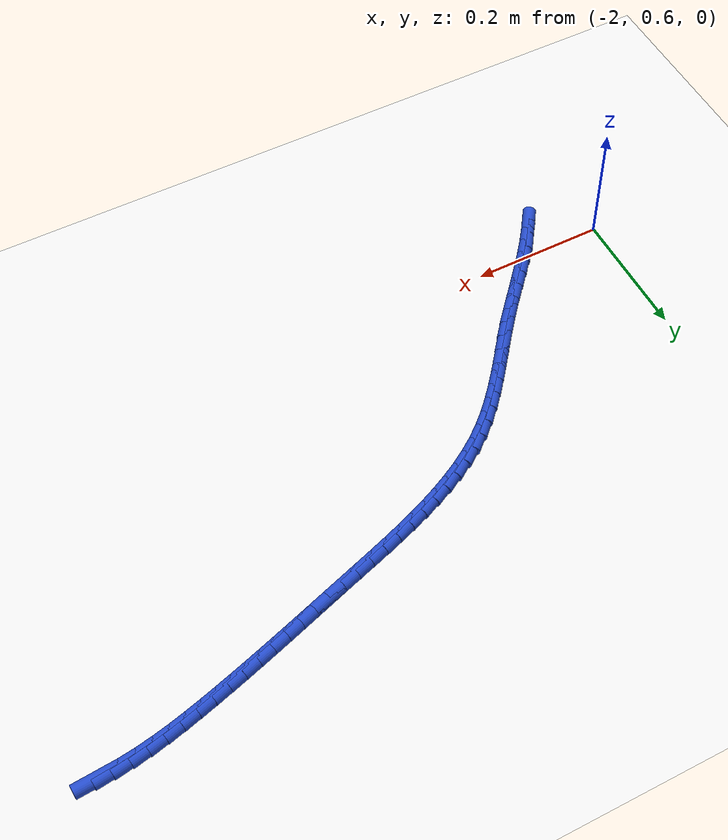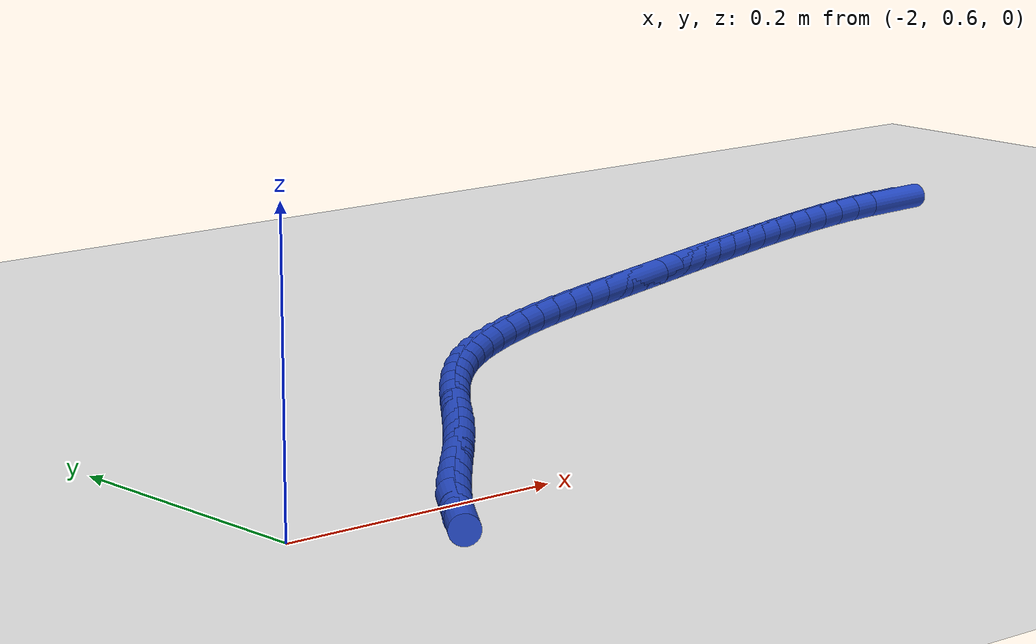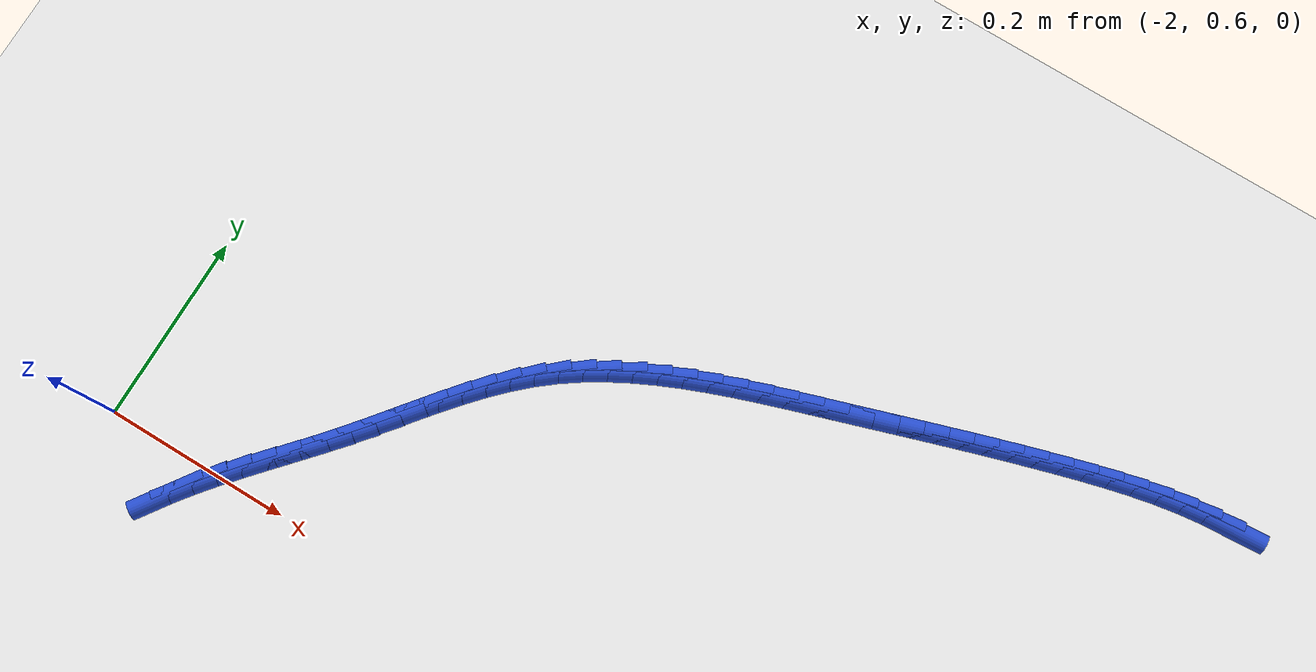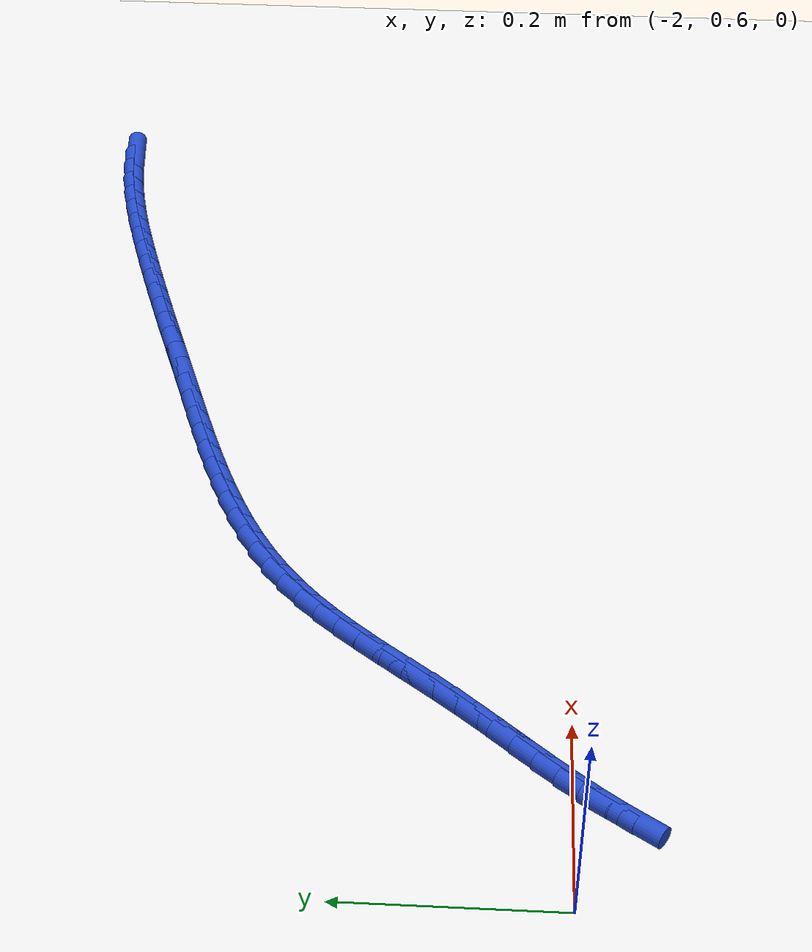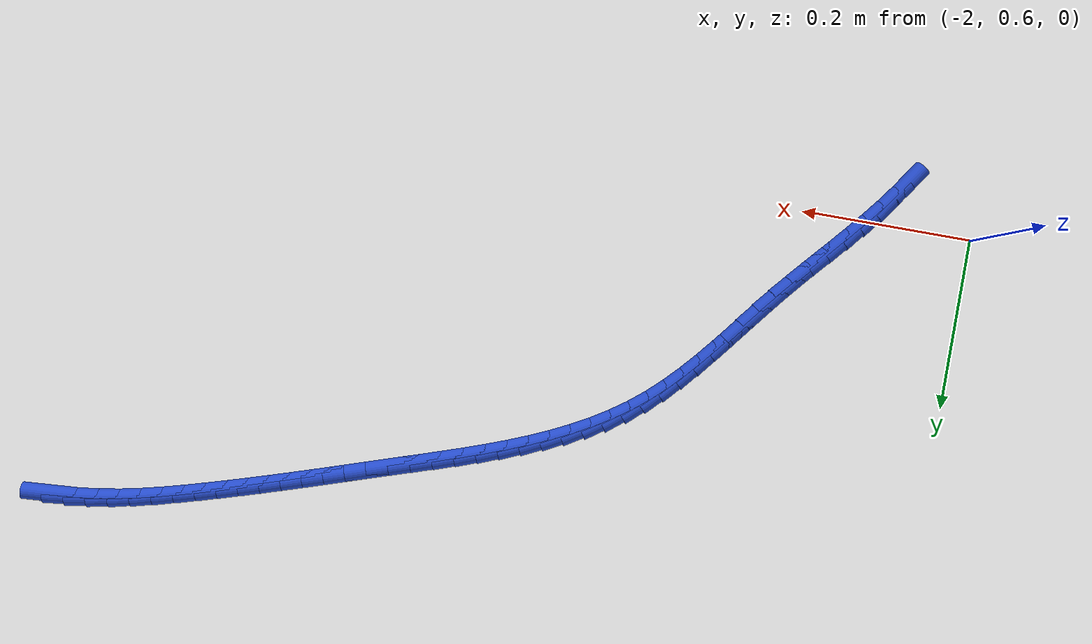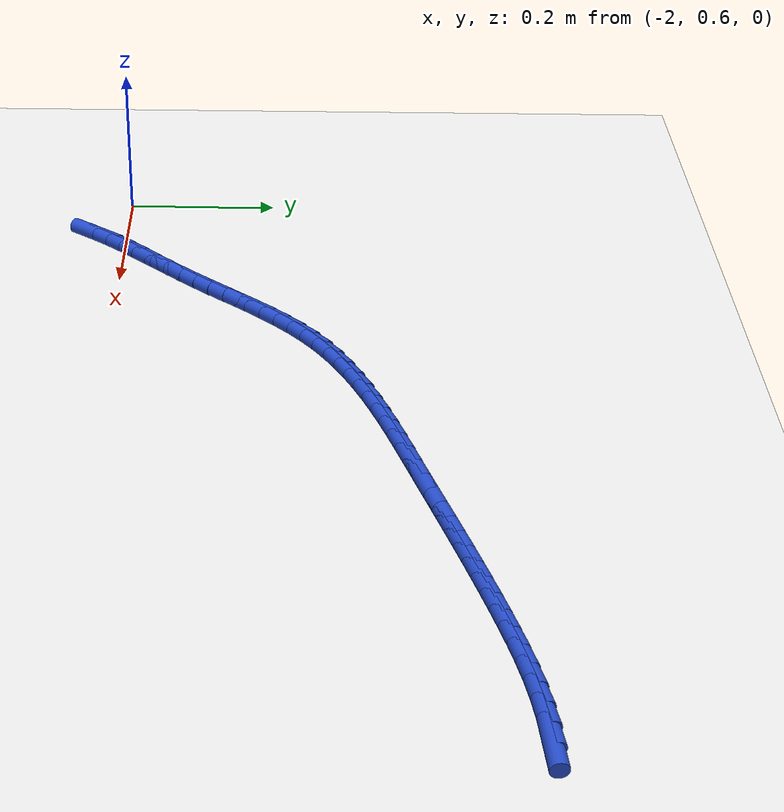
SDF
<sdf version="1.6">
 <world name="default">
  <model name="ground_plane">
   <static>1</static>
   <link name="link">
    <collision name="collision">
     <geometry><plane><normal>0 0 1</normal><size>100 100</size></plane></geometry>
     <surface><friction><ode><mu>100</mu><mu2>50</mu2></ode></friction></surface>
    </collision>
    <visual name="visual">
     <cast_shadows>0</cast_shadows>
     <geometry><plane><normal>0 0 1</normal><size>100 100</size></plane></geometry>
     <material>
      <script><uri>file://media/materials/scripts/gazebo.material</uri><name>Gazebo/WhiteGlow</name></script>
     </material>
    </visual>
   </link>
  </model>
  <model name="line">
   <link name="link_63">
    <pose>-0.9960045848867498 1.0773344773930735 0.01 0 1.57 0.06731471541964741</pose>
    <collision name="collision">
     <geometry><cylinder><radius>0.01</radius><length>0.08</length></cylinder></geometry>
    </collision>
    <visual name="visual">
     <material>
      <script><name>Gazebo/Blue</name><uri>file://media/materials/scripts/gazebo.material</uri></script>
     </material>
     <geometry><cylinder><radius>0.01</radius><length>0.08</length></cylinder></geometry>
    </visual>
   </link>
   <link name="link_64">
    <pose>-1.0209771575715214 1.0756509121041924 0.01 0 1.57 0.12272356616300831</pose>
    <collision name="collision">
     <geometry><cylinder><radius>0.01</radius><length>0.08</length></cylinder></geometry>
    </collision>
    <visual name="visual">
     <material>
      <script><name>Gazebo/Blue</name><uri>file://media/materials/scripts/gazebo.material</uri></script>
     </material>
     <geometry><cylinder><radius>0.01</radius><length>0.08</length></cylinder></geometry>
    </visual>
   </link>
   <link name="link_65">
    <pose>-1.0459637178035281 1.072568984388533 0.01 0 1.57 0.16948650251394934</pose>
    <collision name="collision">
     <geometry><cylinder><radius>0.01</radius><length>0.08</length></cylinder></geometry>
    </collision>
    <visual name="visual">
     <material>
      <script><name>Gazebo/Blue</name><uri>file://media/materials/scripts/gazebo.material</uri></script>
     </material>
     <geometry><cylinder><radius>0.01</radius><length>0.08</length></cylinder></geometry>
    </visual>
   </link>
   <link name="link_66">
    <pose>-1.0709257845715596 1.0682972698237867 0.01 0 1.57 0.207919671183176</pose>
    <collision name="collision">
     <geometry><cylinder><radius>0.01</radius><length>0.08</length></cylinder></geometry>
    </collision>
    <visual name="visual">
     <material>
      <script><name>Gazebo/Blue</name><uri>file://media/materials/scripts/gazebo.material</uri></script>
     </material>
     <geometry><cylinder><radius>0.01</radius><length>0.08</length></cylinder></geometry>
    </visual>
   </link>
   <link name="link_67">
    <pose>-1.0958248768644085 1.0630443439876456 0.01 0 1.57 0.23836959375116112</pose>
    <collision name="collision">
     <geometry><cylinder><radius>0.01</radius><length>0.08</length></cylinder></geometry>
    </collision>
    <visual name="visual">
     <material>
      <script><name>Gazebo/Blue</name><uri>file://media/materials/scripts/gazebo.material</uri></script>
     </material>
     <geometry><cylinder><radius>0.01</radius><length>0.08</length></cylinder></geometry>
    </visual>
   </link>
   <link name="link_68">
    <pose>-1.1206225136708647 1.0570187824578012 0.01 0 1.57 0.26114128751461496</pose>
    <collision name="collision">
     <geometry><cylinder><radius>0.01</radius><length>0.08</length></cylinder></geometry>
    </collision>
    <visual name="visual">
     <material>
      <script><name>Gazebo/Blue</name><uri>file://media/materials/scripts/gazebo.material</uri></script>
     </material>
     <geometry><cylinder><radius>0.01</radius><length>0.08</length></cylinder></geometry>
    </visual>
   </link>
   <link name="link_69">
    <pose>-1.1452802139797196 1.0504291608119447 0.01 0 1.57 0.2764508847128336</pose>
    <collision name="collision">
     <geometry><cylinder><radius>0.01</radius><length>0.08</length></cylinder></geometry>
    </collision>
    <visual name="visual">
     <material>
      <script><name>Gazebo/Blue</name><uri>file://media/materials/scripts/gazebo.material</uri></script>
     </material>
     <geometry><cylinder><radius>0.01</radius><length>0.08</length></cylinder></geometry>
    </visual>
   </link>
   <link name="link_70">
    <pose>-1.1697595203626392 1.043483998624131 0.01 0 1.57 0.28587610004820185</pose>
    <collision name="collision">
     <geometry><cylinder><radius>0.01</radius><length>0.08</length></cylinder></geometry>
    </collision>
    <visual name="visual">
     <material>
      <script><name>Gazebo/Blue</name><uri>file://media/materials/scripts/gazebo.material</uri></script>
     </material>
     <geometry><cylinder><radius>0.01</radius><length>0.08</length></cylinder></geometry>
    </visual>
   </link>
   <link name="link_71">
    <pose>-1.1940408193171363 1.0363470656909701 0.01 0 1.57 0.2935571192196816</pose>
    <collision name="collision">
     <geometry><cylinder><radius>0.01</radius><length>0.08</length></cylinder></geometry>
    </collision>
    <visual name="visual">
     <material>
      <script><name>Gazebo/Blue</name><uri>file://media/materials/scripts/gazebo.material</uri></script>
     </material>
     <geometry><cylinder><radius>0.01</radius><length>0.08</length></cylinder></geometry>
    </visual>
   </link>
   <link name="link_72">
    <pose>-1.2181572337983408 1.029056895445872 0.01 0 1.57 0.30016967015858065</pose>
    <collision name="collision">
     <geometry><cylinder><radius>0.01</radius><length>0.08</length></cylinder></geometry>
    </collision>
    <visual name="visual">
     <material>
      <script><name>Gazebo/Blue</name><uri>file://media/materials/scripts/gazebo.material</uri></script>
     </material>
     <geometry><cylinder><radius>0.01</radius><length>0.08</length></cylinder></geometry>
    </visual>
   </link>
   <link name="link_73">
    <pose>-1.2421510419305883 1.0216302800042354 0.01 0 1.57 0.3056751671598404</pose>
    <collision name="collision">
     <geometry><cylinder><radius>0.01</radius><length>0.08</length></cylinder></geometry>
    </collision>
    <visual name="visual">
     <material>
      <script><name>Gazebo/Blue</name><uri>file://media/materials/scripts/gazebo.material</uri></script>
     </material>
     <geometry><cylinder><radius>0.01</radius><length>0.08</length></cylinder></geometry>
    </visual>
   </link>
   <link name="link_74">
    <pose>-1.2660645218382154 1.0140840114814602 0.01 0 1.57 0.310044543074216</pose>
    <collision name="collision">
     <geometry><cylinder><radius>0.01</radius><length>0.08</length></cylinder></geometry>
    </collision>
    <visual name="visual">
     <material>
      <script><name>Gazebo/Blue</name><uri>file://media/materials/scripts/gazebo.material</uri></script>
     </material>
     <geometry><cylinder><radius>0.01</radius><length>0.08</length></cylinder></geometry>
    </visual>
   </link>
   <link name="link_75">
    <pose>-1.2899399516455572 1.006434881992945 0.01 0 1.57 0.3132585399794946</pose>
    <collision name="collision">
     <geometry><cylinder><radius>0.01</radius><length>0.08</length></cylinder></geometry>
    </collision>
    <visual name="visual">
     <material>
      <script><name>Gazebo/Blue</name><uri>file://media/materials/scripts/gazebo.material</uri></script>
     </material>
     <geometry><cylinder><radius>0.01</radius><length>0.08</length></cylinder></geometry>
    </visual>
   </link>
   <link name="link_76">
    <pose>-1.3138196094769499 0.9986996836540889 0.01 0 1.57 0.31530782320399275</pose>
    <collision name="collision">
     <geometry><cylinder><radius>0.01</radius><length>0.08</length></cylinder></geometry>
    </collision>
    <visual name="visual">
     <material>
      <script><name>Gazebo/Blue</name><uri>file://media/materials/scripts/gazebo.material</uri></script>
     </material>
     <geometry><cylinder><radius>0.01</radius><length>0.08</length></cylinder></geometry>
    </visual>
   </link>
   <link name="link_77">
    <pose>-1.3377457734567293 0.9908952085802912 0.01 0 1.57 0.31619292521042125</pose>
    <collision name="collision">
     <geometry><cylinder><radius>0.01</radius><length>0.08</length></cylinder></geometry>
    </collision>
    <visual name="visual">
     <material>
      <script><name>Gazebo/Blue</name><uri>file://media/materials/scripts/gazebo.material</uri></script>
     </material>
     <geometry><cylinder><radius>0.01</radius><length>0.08</length></cylinder></geometry>
    </visual>
   </link>
   <link name="link_78">
    <pose>-1.3617607217092318 0.9830382488869508 0.01 0 1.57 0.31592402913411954</pose>
    <collision name="collision">
     <geometry><cylinder><radius>0.01</radius><length>0.08</length></cylinder></geometry>
    </collision>
    <visual name="visual">
     <material>
      <script><name>Gazebo/Blue</name><uri>file://media/materials/scripts/gazebo.material</uri></script>
     </material>
     <geometry><cylinder><radius>0.01</radius><length>0.08</length></cylinder></geometry>
    </visual>
   </link>
   <link name="link_79">
    <pose>-1.3859067323587915 0.9751455966894665 0.01 0 1.57 0.3149775887304113</pose>
    <collision name="collision">
     <geometry><cylinder><radius>0.01</radius><length>0.08</length></cylinder></geometry>
    </collision>
    <visual name="visual">
     <material>
      <script><name>Gazebo/Blue</name><uri>file://media/materials/scripts/gazebo.material</uri></script>
     </material>
     <geometry><cylinder><radius>0.01</radius><length>0.08</length></cylinder></geometry>
    </visual>
   </link>
   <link name="link_80">
    <pose>-1.4102158289366342 0.9672250937292876 0.01 0 1.57 0.31752404117702204</pose>
    <collision name="collision">
     <geometry><cylinder><radius>0.01</radius><length>0.08</length></cylinder></geometry>
    </collision>
    <visual name="visual">
     <material>
      <script><name>Gazebo/Blue</name><uri>file://media/materials/scripts/gazebo.material</uri></script>
     </material>
     <geometry><cylinder><radius>0.01</radius><length>0.08</length></cylinder></geometry>
    </visual>
   </link>
   <link name="link_81">
    <pose>-1.434626279805508 0.9592027507275063 0.01 0 1.57 0.32575678194027496</pose>
    <collision name="collision">
     <geometry><cylinder><radius>0.01</radius><length>0.08</length></cylinder></geometry>
    </collision>
    <visual name="visual">
     <material>
      <script><name>Gazebo/Blue</name><uri>file://media/materials/scripts/gazebo.material</uri></script>
     </material>
     <geometry><cylinder><radius>0.01</radius><length>0.08</length></cylinder></geometry>
    </visual>
   </link>
   <link name="link_82">
    <pose>-1.459026102097768 0.9509607183223612 0.01 0 1.57 0.33972220007475834</pose>
    <collision name="collision">
     <geometry><cylinder><radius>0.01</radius><length>0.08</length></cylinder></geometry>
    </collision>
    <visual name="visual">
     <material>
      <script><name>Gazebo/Blue</name><uri>file://media/materials/scripts/gazebo.material</uri></script>
     </material>
     <geometry><cylinder><radius>0.01</radius><length>0.08</length></cylinder></geometry>
    </visual>
   </link>
   <link name="link_83">
    <pose>-1.483302834867046 0.9423807298772864 0.01 0 1.57 0.3595277951602803</pose>
    <collision name="collision">
     <geometry><cylinder><radius>0.01</radius><length>0.08</length></cylinder></geometry>
    </collision>
    <visual name="visual">
     <material>
      <script><name>Gazebo/Blue</name><uri>file://media/materials/scripts/gazebo.material</uri></script>
     </material>
     <geometry><cylinder><radius>0.01</radius><length>0.08</length></cylinder></geometry>
    </visual>
   </link>
   <link name="link_84">
    <pose>-1.5073440171669759 0.9333445187557163 0.01 0 1.57 0.38535181601708507</pose>
    <collision name="collision">
     <geometry><cylinder><radius>0.01</radius><length>0.08</length></cylinder></geometry>
    </collision>
    <visual name="visual">
     <material>
      <script><name>Gazebo/Blue</name><uri>file://media/materials/scripts/gazebo.material</uri></script>
     </material>
     <geometry><cylinder><radius>0.01</radius><length>0.08</length></cylinder></geometry>
    </visual>
   </link>
   <link name="link_85">
    <pose>-1.5310371880511882 0.9237338183210844 0.01 0 1.57 0.4174265664303013</pose>
    <collision name="collision">
     <geometry><cylinder><radius>0.01</radius><length>0.08</length></cylinder></geometry>
    </collision>
    <visual name="visual">
     <material>
      <script><name>Gazebo/Blue</name><uri>file://media/materials/scripts/gazebo.material</uri></script>
     </material>
     <geometry><cylinder><radius>0.01</radius><length>0.08</length></cylinder></geometry>
    </visual>
   </link>
   <link name="link_86">
    <pose>-1.5542698865733173 0.9134303619368249 0.01 0 1.57 0.4560139336835053</pose>
    <collision name="collision">
     <geometry><cylinder><radius>0.01</radius><length>0.08</length></cylinder></geometry>
    </collision>
    <visual name="visual">
     <material>
      <script><name>Gazebo/Blue</name><uri>file://media/materials/scripts/gazebo.material</uri></script>
     </material>
     <geometry><cylinder><radius>0.01</radius><length>0.08</length></cylinder></geometry>
    </visual>
   </link>
   <link name="link_87">
    <pose>-1.576929651786995 0.9023158829663724 0.01 0 1.57 0.5013698508926541</pose>
    <collision name="collision">
     <geometry><cylinder><radius>0.01</radius><length>0.08</length></cylinder></geometry>
    </collision>
    <visual name="visual">
     <material>
      <script><name>Gazebo/Blue</name><uri>file://media/materials/scripts/gazebo.material</uri></script>
     </material>
     <geometry><cylinder><radius>0.01</radius><length>0.08</length></cylinder></geometry>
    </visual>
   </link>
   <link name="link_88">
    <pose>-1.5989040227458537 0.8902721147731602 0.01 0 1.57 0.5536945455587712</pose>
    <collision name="collision">
     <geometry><cylinder><radius>0.01</radius><length>0.08</length></cylinder></geometry>
    </collision>
    <visual name="visual">
     <material>
      <script><name>Gazebo/Blue</name><uri>file://media/materials/scripts/gazebo.material</uri></script>
     </material>
     <geometry><cylinder><radius>0.01</radius><length>0.08</length></cylinder></geometry>
    </visual>
   </link>
   <link name="link_89">
    <pose>-1.6200805385035268 0.8771807907206227 0.01 0 1.57 0.6130669753876479</pose>
    <collision name="collision">
     <geometry><cylinder><radius>0.01</radius><length>0.08</length></cylinder></geometry>
    </collision>
    <visual name="visual">
     <material>
      <script><name>Gazebo/Blue</name><uri>file://media/materials/scripts/gazebo.material</uri></script>
     </material>
     <geometry><cylinder><radius>0.01</radius><length>0.08</length></cylinder></geometry>
    </visual>
   </link>
   <link name="link_90">
    <pose>-1.640346738113646 0.8629236441721937 0.01 0 1.57 0.6792917852148674</pose>
    <collision name="collision">
     <geometry><cylinder><radius>0.01</radius><length>0.08</length></cylinder></geometry>
    </collision>
    <visual name="visual">
     <material>
      <script><name>Gazebo/Blue</name><uri>file://media/materials/scripts/gazebo.material</uri></script>
     </material>
     <geometry><cylinder><radius>0.01</radius><length>0.08</length></cylinder></geometry>
    </visual>
   </link>
   <link name="link_91">
    <pose>-1.6595913738178072 0.847383779711571 0.01 0 1.57 0.7457448923654022</pose>
    <collision name="collision">
     <geometry><cylinder><radius>0.01</radius><length>0.08</length></cylinder></geometry>
    </collision>
    <visual name="visual">
     <material>
      <script><name>Gazebo/Blue</name><uri>file://media/materials/scripts/gazebo.material</uri></script>
     </material>
     <geometry><cylinder><radius>0.01</radius><length>0.08</length></cylinder></geometry>
    </visual>
   </link>
   <link name="link_92">
    <pose>-1.6778054168298182 0.830559836143301 0.01 0 1.57 0.801148146514581</pose>
    <collision name="collision">
     <geometry><cylinder><radius>0.01</radius><length>0.08</length></cylinder></geometry>
    </collision>
    <visual name="visual">
     <material>
      <script><name>Gazebo/Blue</name><uri>file://media/materials/scripts/gazebo.material</uri></script>
     </material>
     <geometry><cylinder><radius>0.01</radius><length>0.08</length></cylinder></geometry>
    </visual>
   </link>
   <link name="link_93">
    <pose>-1.6951580148613614 0.8126518383983024 0.01 0 1.57 0.8443878576699791</pose>
    <collision name="collision">
     <geometry><cylinder><radius>0.01</radius><length>0.08</length></cylinder></geometry>
    </collision>
    <visual name="visual">
     <material>
      <script><name>Gazebo/Blue</name><uri>file://media/materials/scripts/gazebo.material</uri></script>
     </material>
     <geometry><cylinder><radius>0.01</radius><length>0.08</length></cylinder></geometry>
    </visual>
   </link>
   <link name="link_94">
    <pose>-1.7118362067216666 0.7938800330353404 0.01 0 1.57 0.8757130713860872</pose>
    <collision name="collision">
     <geometry><cylinder><radius>0.01</radius><length>0.08</length></cylinder></geometry>
    </collision>
    <visual name="visual">
     <material>
      <script><name>Gazebo/Blue</name><uri>file://media/materials/scripts/gazebo.material</uri></script>
     </material>
     <geometry><cylinder><radius>0.01</radius><length>0.08</length></cylinder></geometry>
    </visual>
   </link>
   <link name="link_95">
    <pose>-1.7280270312199602 0.7744646666131806 0.01 0 1.57 0.8954547529954168</pose>
    <collision name="collision">
     <geometry><cylinder><radius>0.01</radius><length>0.08</length></cylinder></geometry>
    </collision>
    <visual name="visual">
     <material>
      <script><name>Gazebo/Blue</name><uri>file://media/materials/scripts/gazebo.material</uri></script>
     </material>
     <geometry><cylinder><radius>0.01</radius><length>0.08</length></cylinder></geometry>
    </visual>
   </link>
   <link name="link_96">
    <pose>-1.74391752716547 0.7546259856905876 0.01 0 1.57 0.9038986202210106</pose>
    <collision name="collision">
     <geometry><cylinder><radius>0.01</radius><length>0.08</length></cylinder></geometry>
    </collision>
    <visual name="visual">
     <material>
      <script><name>Gazebo/Blue</name><uri>file://media/materials/scripts/gazebo.material</uri></script>
     </material>
     <geometry><cylinder><radius>0.01</radius><length>0.08</length></cylinder></geometry>
    </visual>
   </link>
   <link name="link_97">
    <pose>-1.759694733367425 0.7345842368263267 0.01 0 1.57 0.901213547198104</pose>
    <collision name="collision">
     <geometry><cylinder><radius>0.01</radius><length>0.08</length></cylinder></geometry>
    </collision>
    <visual name="visual">
     <material>
      <script><name>Gazebo/Blue</name><uri>file://media/materials/scripts/gazebo.material</uri></script>
     </material>
     <geometry><cylinder><radius>0.01</radius><length>0.08</length></cylinder></geometry>
    </visual>
   </link>
   <link name="link_98">
    <pose>-1.7755456886350514 0.7145596665791628 0.01 0 1.57 0.8874249639810242</pose>
    <collision name="collision">
     <geometry><cylinder><radius>0.01</radius><length>0.08</length></cylinder></geometry>
    </collision>
    <visual name="visual">
     <material>
      <script><name>Gazebo/Blue</name><uri>file://media/materials/scripts/gazebo.material</uri></script>
     </material>
     <geometry><cylinder><radius>0.01</radius><length>0.08</length></cylinder></geometry>
    </visual>
   </link>
   <link name="link_99">
    <pose>-1.7916574273547725 0.6947725172894518 0.01 0 1.57 0.8663955949868426</pose>
    <collision name="collision">
     <geometry><cylinder><radius>0.01</radius><length>0.08</length></cylinder></geometry>
    </collision>
    <visual name="visual">
     <material>
      <script><name>Gazebo/Blue</name><uri>file://media/materials/scripts/gazebo.material</uri></script>
     </material>
     <geometry><cylinder><radius>0.01</radius><length>0.08</length></cylinder></geometry>
    </visual>
   </link>
   <link name="link_100">
    <pose>-1.8081437466905885 0.6753731786713502 0.01 0 1.57 0.8520960820096963</pose>
    <collision name="collision">
     <geometry><cylinder><radius>0.01</radius><length>0.08</length></cylinder></geometry>
    </collision>
    <visual name="visual">
     <material>
      <script><name>Gazebo/Blue</name><uri>file://media/materials/scripts/gazebo.material</uri></script>
     </material>
     <geometry><cylinder><radius>0.01</radius><length>0.08</length></cylinder></geometry>
    </visual>
   </link>
   <link name="link_101">
    <pose>-1.8248592112445023 0.6562647880903726 0.01 0 1.57 0.8476834632297168</pose>
    <collision name="collision">
     <geometry><cylinder><radius>0.01</radius><length>0.08</length></cylinder></geometry>
    </collision>
    <visual name="visual">
     <material>
      <script><name>Gazebo/Blue</name><uri>file://media/materials/scripts/gazebo.material</uri></script>
     </material>
     <geometry><cylinder><radius>0.01</radius><length>0.08</length></cylinder></geometry>
    </visual>
   </link>
   <link name="link_102">
    <pose>-1.8416010560319251 0.6372958027637425 0.01 0 1.57 0.8532515036031932</pose>
    <collision name="collision">
     <geometry><cylinder><radius>0.01</radius><length>0.08</length></cylinder></geometry>
    </collision>
    <visual name="visual">
     <material>
      <script><name>Gazebo/Blue</name><uri>file://media/materials/scripts/gazebo.material</uri></script>
     </material>
     <geometry><cylinder><radius>0.01</radius><length>0.08</length></cylinder></geometry>
    </visual>
   </link>
   <link name="link_103">
    <pose>-1.8581665160682672 0.6183146799086842 0.01 0 1.57 0.8689394612666028</pose>
    <collision name="collision">
     <geometry><cylinder><radius>0.01</radius><length>0.08</length></cylinder></geometry>
    </collision>
    <visual name="visual">
     <material>
      <script><name>Gazebo/Blue</name><uri>file://media/materials/scripts/gazebo.material</uri></script>
     </material>
     <geometry><cylinder><radius>0.01</radius><length>0.08</length></cylinder></geometry>
    </visual>
   </link>
   <link name="link_104">
    <pose>-1.8743528263689386 0.5991698767424208 0.01 0 1.57 0.8949166706594908</pose>
    <collision name="collision">
     <geometry><cylinder><radius>0.01</radius><length>0.08</length></cylinder></geometry>
    </collision>
    <visual name="visual">
     <material>
      <script><name>Gazebo/Blue</name><uri>file://media/materials/scripts/gazebo.material</uri></script>
     </material>
     <geometry><cylinder><radius>0.01</radius><length>0.08</length></cylinder></geometry>
    </visual>
   </link>
   <link name="link_105">
    <pose>-1.8899572219493506 0.5797098504821763 0.01 0 1.57 0.9308694913975599</pose>
    <collision name="collision">
     <geometry><cylinder><radius>0.01</radius><length>0.08</length></cylinder></geometry>
    </collision>
    <visual name="visual">
     <material>
      <script><name>Gazebo/Blue</name><uri>file://media/materials/scripts/gazebo.material</uri></script>
     </material>
     <geometry><cylinder><radius>0.01</radius><length>0.08</length></cylinder></geometry>
    </visual>
   </link>
   <link name="link_106">
    <pose>-1.9047865515706954 0.5597894717724959 0.01 0 1.57 0.96977511048813</pose>
    <collision name="collision">
     <geometry><cylinder><radius>0.01</radius><length>0.08</length></cylinder></geometry>
    </collision>
    <visual name="visual">
     <material>
      <script><name>Gazebo/Blue</name><uri>file://media/materials/scripts/gazebo.material</uri></script>
     </material>
     <geometry><cylinder><radius>0.01</radius><length>0.08</length></cylinder></geometry>
    </visual>
   </link>
  </model>
 </world>
</sdf>
